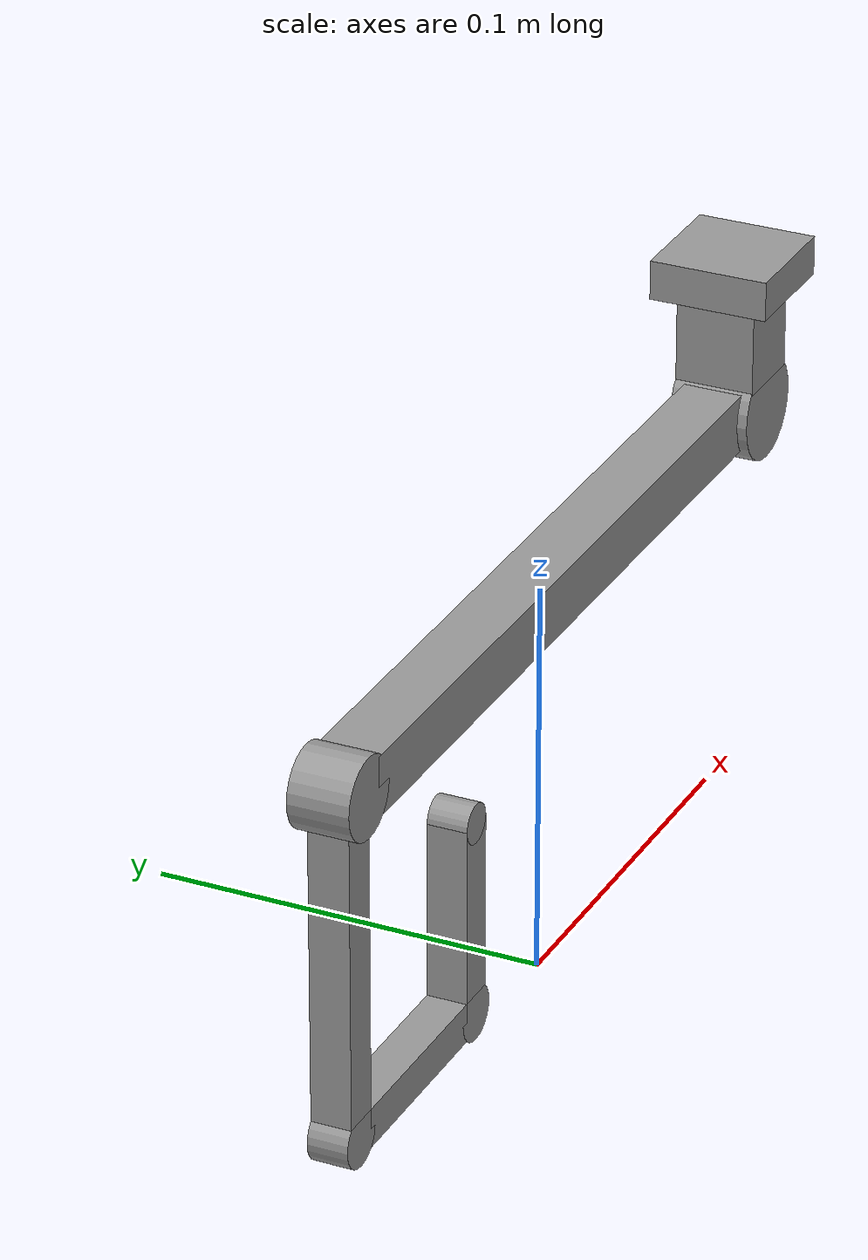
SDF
<?xml version='1.0'?>
<sdf version='1.6'>
  <model name='Hook_03'>
    <link name='base_mount'>
      <pose frame=''>0.11 0 0.1355 0 -0 0</pose>
      <inertial>
        <mass>0.005</mass>
        <inertia>
          <ixx>0.166667</ixx>
          <ixy>0</ixy>
          <ixz>0</ixz>
          <iyy>0.166667</iyy>
          <iyz>0</iyz>
          <izz>0.166667</izz>
        </inertia>
        <pose frame=''>0 0 0 0 -0 0</pose>
      </inertial>
      <self_collide>0</self_collide>
      <kinematic>0</kinematic>
      <visual name='visual'>
        <pose frame=''>0 0 0 0 -0 0</pose>
        <geometry>
          <box>
            <size>0.03 0.03 0.01</size>
          </box>
        </geometry>
        <material>
          <lighting>1</lighting>
          <script>
            <uri>file://media/materials/scripts/gazebo.material</uri>
            <name>Gazebo/Grey</name>
          </script>
          <ambient>0.3 0.3 0.3 1</ambient>
          <diffuse>0.7 0.7 0.7 1</diffuse>
          <specular>0.01 0.01 0.01 1</specular>
          <emissive>0 0 0 1</emissive>
          <shader type='vertex'>
            <normal_map>__default__</normal_map>
          </shader>
        </material>
        <cast_shadows>1</cast_shadows>
        <transparency>0</transparency>
      </visual>
      <collision name='collision'>
        <laser_retro>0</laser_retro>
        <max_contacts>10</max_contacts>
        <pose frame=''>0 0 0 0 -0 0</pose>
        <geometry>
          <box>
            <size>0.03 0.03 0.01</size>
          </box>
        </geometry>
        <surface>
          <friction>
            <ode>
              <mu>1</mu>
              <mu2>1</mu2>
              <fdir1>0 0 0</fdir1>
              <slip1>0</slip1>
              <slip2>0</slip2>
            </ode>
            <torsional>
              <coefficient>1</coefficient>
              <patch_radius>0</patch_radius>
              <surface_radius>0</surface_radius>
              <use_patch_radius>1</use_patch_radius>
              <ode>
                <slip>0</slip>
              </ode>
            </torsional>
          </friction>
          <bounce>
            <restitution_coefficient>0</restitution_coefficient>
            <threshold>1e+06</threshold>
          </bounce>
          <contact>
            <collide_without_contact>0</collide_without_contact>
            <collide_without_contact_bitmask>1</collide_without_contact_bitmask>
            <collide_bitmask>1</collide_bitmask>
            <ode>
              <soft_cfm>0</soft_cfm>
              <soft_erp>0.2</soft_erp>
              <kp>1e+13</kp>
              <kd>1</kd>
              <max_vel>0.01</max_vel>
              <min_depth>0</min_depth>
            </ode>
            <bullet>
              <split_impulse>1</split_impulse>
              <split_impulse_penetration_threshold>-0.01</split_impulse_penetration_threshold>
              <soft_cfm>0</soft_cfm>
              <soft_erp>0.2</soft_erp>
              <kp>1e+13</kp>
              <kd>1</kd>
            </bullet>
          </contact>
        </surface>
      </collision>
    </link>
    <link name='base'>
      <pose frame=''>0.11 0 0.119 0 -0 0</pose>
      <inertial>
        <mass>0.01</mass>
        <inertia>
          <ixx>0.166667</ixx>
          <ixy>0</ixy>
          <ixz>0</ixz>
          <iyy>0.166667</iyy>
          <iyz>0</iyz>
          <izz>0.166667</izz>
        </inertia>
        <pose frame=''>0 0 0 0 -0 0</pose>
      </inertial>
      <self_collide>0</self_collide>
      <kinematic>0</kinematic>
      <visual name='visual'>
        <pose frame=''>0 0 0 0 -0 0</pose>
        <geometry>
          <box>
            <size>0.02 0.02 0.023</size>
          </box>
        </geometry>
        <material>
          <lighting>1</lighting>
          <script>
            <uri>file://media/materials/scripts/gazebo.material</uri>
            <name>Gazebo/Grey</name>
          </script>
          <ambient>0.3 0.3 0.3 1</ambient>
          <diffuse>0.7 0.7 0.7 1</diffuse>
          <specular>0.01 0.01 0.01 1</specular>
          <emissive>0 0 0 1</emissive>
          <shader type='vertex'>
            <normal_map>__default__</normal_map>
          </shader>
        </material>
        <cast_shadows>1</cast_shadows>
        <transparency>0</transparency>
      </visual>
      <collision name='collision'>
        <laser_retro>0</laser_retro>
        <max_contacts>10</max_contacts>
        <pose frame=''>0 0 0 0 -0 0</pose>
        <geometry>
          <box>
            <size>0.02 0.02 0.023</size>
          </box>
        </geometry>
        <surface>
          <friction>
            <ode>
              <mu>1</mu>
              <mu2>1</mu2>
              <fdir1>0 0 0</fdir1>
              <slip1>0</slip1>
              <slip2>0</slip2>
            </ode>
            <torsional>
              <coefficient>1</coefficient>
              <patch_radius>0</patch_radius>
              <surface_radius>0</surface_radius>
              <use_patch_radius>1</use_patch_radius>
              <ode>
                <slip>0</slip>
              </ode>
            </torsional>
          </friction>
          <bounce>
            <restitution_coefficient>0</restitution_coefficient>
            <threshold>1e+06</threshold>
          </bounce>
          <contact>
            <collide_without_contact>0</collide_without_contact>
            <collide_without_contact_bitmask>1</collide_without_contact_bitmask>
            <collide_bitmask>1</collide_bitmask>
            <ode>
              <soft_cfm>0</soft_cfm>
              <soft_erp>0.2</soft_erp>
              <kp>1e+13</kp>
              <kd>1</kd>
              <max_vel>0.01</max_vel>
              <min_depth>0</min_depth>
            </ode>
            <bullet>
              <split_impulse>1</split_impulse>
              <split_impulse_penetration_threshold>-0.01</split_impulse_penetration_threshold>
              <soft_cfm>0</soft_cfm>
              <soft_erp>0.2</soft_erp>
              <kp>1e+13</kp>
              <kd>1</kd>
            </bullet>
          </contact>
        </surface>
      </collision>
    </link>
    <link name='basejoint'>
      <pose frame=''>0.11 0 0.1 0 -0 0</pose>
      <inertial>
        <mass>0.01</mass>
        <inertia>
          <ixx>0.145833</ixx>
          <ixy>0</ixy>
          <ixz>0</ixz>
          <iyy>0.145833</iyy>
          <iyz>0</iyz>
          <izz>0.125</izz>
        </inertia>
        <pose frame=''>0 0 0 0 -0 0</pose>
      </inertial>
      <self_collide>0</self_collide>
      <kinematic>0</kinematic>
      <visual name='visual'>
        <pose frame=''>0 0 0 1.57 -0 0</pose>
        <geometry>
          <cylinder>
            <radius>0.013</radius>
            <length>0.02</length>
          </cylinder>
        </geometry>
        <material>
          <lighting>1</lighting>
          <script>
            <uri>file://media/materials/scripts/gazebo.material</uri>
            <name>Gazebo/Grey</name>
          </script>
          <ambient>0.3 0.3 0.3 1</ambient>
          <diffuse>0.7 0.7 0.7 1</diffuse>
          <specular>0.01 0.01 0.01 1</specular>
          <emissive>0 0 0 1</emissive>
          <shader type='vertex'>
            <normal_map>__default__</normal_map>
          </shader>
        </material>
        <cast_shadows>1</cast_shadows>
        <transparency>0</transparency>
      </visual>
      <collision name='collision'>
        <laser_retro>0</laser_retro>
        <max_contacts>10</max_contacts>
        <pose frame=''>0 0 0 1.57 -0 0</pose>
        <geometry>
          <cylinder>
            <radius>0.013</radius>
            <length>0.02</length>
          </cylinder>
        </geometry>
        <surface>
          <friction>
            <ode>
              <mu>1</mu>
              <mu2>1</mu2>
              <fdir1>0 0 0</fdir1>
              <slip1>0</slip1>
              <slip2>0</slip2>
            </ode>
            <torsional>
              <coefficient>1</coefficient>
              <patch_radius>0</patch_radius>
              <surface_radius>0</surface_radius>
              <use_patch_radius>1</use_patch_radius>
              <ode>
                <slip>0</slip>
              </ode>
            </torsional>
          </friction>
          <bounce>
            <restitution_coefficient>0</restitution_coefficient>
            <threshold>1e+06</threshold>
          </bounce>
          <contact>
            <collide_without_contact>0</collide_without_contact>
            <collide_without_contact_bitmask>1</collide_without_contact_bitmask>
            <collide_bitmask>1</collide_bitmask>
            <ode>
              <soft_cfm>0</soft_cfm>
              <soft_erp>0.2</soft_erp>
              <kp>1e+13</kp>
              <kd>1</kd>
              <max_vel>0.01</max_vel>
              <min_depth>0</min_depth>
            </ode>
            <bullet>
              <split_impulse>1</split_impulse>
              <split_impulse_penetration_threshold>-0.01</split_impulse_penetration_threshold>
              <soft_cfm>0</soft_cfm>
              <soft_erp>0.2</soft_erp>
              <kp>1e+13</kp>
              <kd>1</kd>
            </bullet>
          </contact>
        </surface>
      </collision>
    </link>
    <link name='arm'>
      <pose frame=''>0 0 0.1 0 -0 0</pose>
      <inertial>
        <mass>0.02</mass>
        <inertia>
          <ixx>0.166667</ixx>
          <ixy>0</ixy>
          <ixz>0</ixz>
          <iyy>0.166667</iyy>
          <iyz>0</iyz>
          <izz>0.166667</izz>
        </inertia>
        <pose frame=''>0 0 0 0 -0 0</pose>
      </inertial>
      <self_collide>0</self_collide>
      <kinematic>0</kinematic>
      <gravity>1</gravity>
      <visual name='visual'>
        <pose frame=''>0 0 0 0 -0 0</pose>
        <geometry>
          <box>
            <size>0.2 0.015 0.015</size>
          </box>
        </geometry>
        <material>
          <lighting>1</lighting>
          <script>
            <uri>file://media/materials/scripts/gazebo.material</uri>
            <name>Gazebo/Grey</name>
          </script>
          <ambient>0.3 0.3 0.3 1</ambient>
          <diffuse>0.7 0.7 0.7 1</diffuse>
          <specular>0.01 0.01 0.01 1</specular>
          <emissive>0 0 0 1</emissive>
          <shader type='vertex'>
            <normal_map>__default__</normal_map>
          </shader>
        </material>
        <cast_shadows>1</cast_shadows>
        <transparency>0</transparency>
      </visual>
      <collision name='collision'>
        <laser_retro>0</laser_retro>
        <max_contacts>10</max_contacts>
        <pose frame=''>0 0 0 0 -0 0</pose>
        <geometry>
          <box>
            <size>0.2 0.015 0.015</size>
          </box>
        </geometry>
        <surface>
          <friction>
            <ode>
              <mu>1</mu>
              <mu2>1</mu2>
              <fdir1>0 0 0</fdir1>
              <slip1>0</slip1>
              <slip2>0</slip2>
            </ode>
            <torsional>
              <coefficient>1</coefficient>
              <patch_radius>0</patch_radius>
              <surface_radius>0</surface_radius>
              <use_patch_radius>1</use_patch_radius>
              <ode>
                <slip>0</slip>
              </ode>
            </torsional>
          </friction>
          <bounce>
            <restitution_coefficient>0</restitution_coefficient>
            <threshold>1e+06</threshold>
          </bounce>
          <contact>
            <collide_without_contact>0</collide_without_contact>
            <collide_without_contact_bitmask>1</collide_without_contact_bitmask>
            <collide_bitmask>1</collide_bitmask>
            <ode>
              <soft_cfm>0</soft_cfm>
              <soft_erp>0.2</soft_erp>
              <kp>1e+13</kp>
              <kd>1</kd>
              <max_vel>0.01</max_vel>
              <min_depth>0</min_depth>
            </ode>
            <bullet>
              <split_impulse>1</split_impulse>
              <split_impulse_penetration_threshold>-0.01</split_impulse_penetration_threshold>
              <soft_cfm>0</soft_cfm>
              <soft_erp>0.2</soft_erp>
              <kp>1e+13</kp>
              <kd>1</kd>
            </bullet>
          </contact>
        </surface>
      </collision>
    </link>
    <link name='armjoint'>
      <pose frame=''>-0.105 0 0.1 0 -0 0</pose>
      <inertial>
        <mass>0.01</mass>
        <inertia>
          <ixx>0.145833</ixx>
          <ixy>0</ixy>
          <ixz>0</ixz>
          <iyy>0.145833</iyy>
          <iyz>0</iyz>
          <izz>0.125</izz>
        </inertia>
        <pose frame=''>0 0 0 0 -0 0</pose>
      </inertial>
      <self_collide>0</self_collide>
      <kinematic>0</kinematic>
      <gravity>1</gravity>
      <visual name='visual'>
        <pose frame=''>0 0 0 1.57 -0 0</pose>
        <geometry>
          <cylinder>
            <radius>0.01</radius>
            <length>0.015</length>
          </cylinder>
        </geometry>
        <material>
          <lighting>1</lighting>
          <script>
            <uri>file://media/materials/scripts/gazebo.material</uri>
            <name>Gazebo/Grey</name>
          </script>
          <ambient>0.3 0.3 0.3 1</ambient>
          <diffuse>0.7 0.7 0.7 1</diffuse>
          <specular>0.01 0.01 0.01 1</specular>
          <emissive>0 0 0 1</emissive>
          <shader type='vertex'>
            <normal_map>__default__</normal_map>
          </shader>
        </material>
        <cast_shadows>1</cast_shadows>
        <transparency>0</transparency>
      </visual>
      <collision name='collision'>
        <laser_retro>0</laser_retro>
        <max_contacts>10</max_contacts>
        <pose frame=''>0 0 0 1.57 -0 0</pose>
        <geometry>
          <cylinder>
            <radius>0.01</radius>
            <length>0.015</length>
          </cylinder>
        </geometry>
        <surface>
          <friction>
            <ode>
              <mu>1</mu>
              <mu2>1</mu2>
              <fdir1>0 0 0</fdir1>
              <slip1>0</slip1>
              <slip2>0</slip2>
            </ode>
            <torsional>
              <coefficient>1</coefficient>
              <patch_radius>0</patch_radius>
              <surface_radius>0</surface_radius>
              <use_patch_radius>1</use_patch_radius>
              <ode>
                <slip>0</slip>
              </ode>
            </torsional>
          </friction>
          <bounce>
            <restitution_coefficient>0</restitution_coefficient>
            <threshold>1e+06</threshold>
          </bounce>
          <contact>
            <collide_without_contact>0</collide_without_contact>
            <collide_without_contact_bitmask>1</collide_without_contact_bitmask>
            <collide_bitmask>1</collide_bitmask>
            <ode>
              <soft_cfm>0</soft_cfm>
              <soft_erp>0.2</soft_erp>
              <kp>1e+13</kp>
              <kd>1</kd>
              <max_vel>0.01</max_vel>
              <min_depth>0</min_depth>
            </ode>
            <bullet>
              <split_impulse>1</split_impulse>
              <split_impulse_penetration_threshold>-0.01</split_impulse_penetration_threshold>
              <soft_cfm>0</soft_cfm>
              <soft_erp>0.2</soft_erp>
              <kp>1e+13</kp>
              <kd>1</kd>
            </bullet>
          </contact>
        </surface>
      </collision>
    </link>
    <link name='bone1'>
      <pose frame=''>-0.105 0 0.055 0 -0 0</pose>
      <inertial>
        <mass>0.01</mass>
        <inertia>
          <ixx>0.166667</ixx>
          <ixy>0</ixy>
          <ixz>0</ixz>
          <iyy>0.166667</iyy>
          <iyz>0</iyz>
          <izz>0.166667</izz>
        </inertia>
        <pose frame=''>0 0 0 0 -0 0</pose>
      </inertial>
      <self_collide>0</self_collide>
      <kinematic>0</kinematic>
      <visual name='visual'>
        <pose frame=''>0 0 0 0 -0 0</pose>
        <geometry>
          <box>
            <size>0.01 0.01 0.075</size>
          </box>
        </geometry>
        <material>
          <lighting>1</lighting>
          <script>
            <uri>file://media/materials/scripts/gazebo.material</uri>
            <name>Gazebo/Grey</name>
          </script>
          <ambient>0.3 0.3 0.3 1</ambient>
          <diffuse>0.7 0.7 0.7 1</diffuse>
          <specular>0.01 0.01 0.01 1</specular>
          <emissive>0 0 0 1</emissive>
          <shader type='vertex'>
            <normal_map>__default__</normal_map>
          </shader>
        </material>
        <cast_shadows>1</cast_shadows>
        <transparency>0</transparency>
      </visual>
      <collision name='collision'>
        <laser_retro>0</laser_retro>
        <max_contacts>10</max_contacts>
        <pose frame=''>0 0 0 0 -0 0</pose>
        <geometry>
          <box>
            <size>0.01 0.01 0.075</size>
          </box>
        </geometry>
        <surface>
          <friction>
            <ode>
              <mu>1</mu>
              <mu2>1</mu2>
              <fdir1>0 0 0</fdir1>
              <slip1>0</slip1>
              <slip2>0</slip2>
            </ode>
            <torsional>
              <coefficient>1</coefficient>
              <patch_radius>0</patch_radius>
              <surface_radius>0</surface_radius>
              <use_patch_radius>1</use_patch_radius>
              <ode>
                <slip>0</slip>
              </ode>
            </torsional>
          </friction>
          <bounce>
            <restitution_coefficient>0</restitution_coefficient>
            <threshold>1e+06</threshold>
          </bounce>
          <contact>
            <collide_without_contact>0</collide_without_contact>
            <collide_without_contact_bitmask>1</collide_without_contact_bitmask>
            <collide_bitmask>1</collide_bitmask>
            <ode>
              <soft_cfm>0</soft_cfm>
              <soft_erp>0.2</soft_erp>
              <kp>1e+13</kp>
              <kd>1</kd>
              <max_vel>0.01</max_vel>
              <min_depth>0</min_depth>
            </ode>
            <bullet>
              <split_impulse>1</split_impulse>
              <split_impulse_penetration_threshold>-0.01</split_impulse_penetration_threshold>
              <soft_cfm>0</soft_cfm>
              <soft_erp>0.2</soft_erp>
              <kp>1e+13</kp>
              <kd>1</kd>
            </bullet>
          </contact>
        </surface>
      </collision>
    </link>
    <link name='bone1joint'>
      <pose frame=''>-0.105 0 0.0125 0 -0 0</pose>
      <inertial>
        <mass>0.01</mass>
        <inertia>
          <ixx>0.145833</ixx>
          <ixy>0</ixy>
          <ixz>0</ixz>
          <iyy>0.145833</iyy>
          <iyz>0</iyz>
          <izz>0.125</izz>
        </inertia>
        <pose frame=''>0 0 0 0 -0 0</pose>
      </inertial>
      <self_collide>0</self_collide>
      <kinematic>0</kinematic>
      <gravity>1</gravity>
      <visual name='visual'>
        <pose frame=''>0 0 0 1.57 -0 0</pose>
        <geometry>
          <cylinder>
            <radius>0.007</radius>
            <length>0.01</length>
          </cylinder>
        </geometry>
        <material>
          <lighting>1</lighting>
          <script>
            <uri>file://media/materials/scripts/gazebo.material</uri>
            <name>Gazebo/Grey</name>
          </script>
          <ambient>0.3 0.3 0.3 1</ambient>
          <diffuse>0.7 0.7 0.7 1</diffuse>
          <specular>0.01 0.01 0.01 1</specular>
          <emissive>0 0 0 1</emissive>
          <shader type='vertex'>
            <normal_map>__default__</normal_map>
          </shader>
        </material>
        <cast_shadows>1</cast_shadows>
        <transparency>0</transparency>
      </visual>
      <collision name='collision'>
        <laser_retro>0</laser_retro>
        <max_contacts>10</max_contacts>
        <pose frame=''>0 0 0 1.57 -0 0</pose>
        <geometry>
          <cylinder>
            <radius>0.007</radius>
            <length>0.01</length>
          </cylinder>
        </geometry>
        <surface>
          <friction>
            <ode>
              <mu>1</mu>
              <mu2>1</mu2>
              <fdir1>0 0 0</fdir1>
              <slip1>0</slip1>
              <slip2>0</slip2>
            </ode>
            <torsional>
              <coefficient>1</coefficient>
              <patch_radius>0</patch_radius>
              <surface_radius>0</surface_radius>
              <use_patch_radius>1</use_patch_radius>
              <ode>
                <slip>0</slip>
              </ode>
            </torsional>
          </friction>
          <bounce>
            <restitution_coefficient>0</restitution_coefficient>
            <threshold>1e+06</threshold>
          </bounce>
          <contact>
            <collide_without_contact>0</collide_without_contact>
            <collide_without_contact_bitmask>1</collide_without_contact_bitmask>
            <collide_bitmask>1</collide_bitmask>
            <ode>
              <soft_cfm>0</soft_cfm>
              <soft_erp>0.2</soft_erp>
              <kp>1e+13</kp>
              <kd>1</kd>
              <max_vel>0.01</max_vel>
              <min_depth>0</min_depth>
            </ode>
            <bullet>
              <split_impulse>1</split_impulse>
              <split_impulse_penetration_threshold>-0.01</split_impulse_penetration_threshold>
              <soft_cfm>0</soft_cfm>
              <soft_erp>0.2</soft_erp>
              <kp>1e+13</kp>
              <kd>1</kd>
            </bullet>
          </contact>
        </surface>
      </collision>
    </link>
    <link name='bone2'>
      <pose frame=''>-0.075 0 0.0125 0 -0 0</pose>
      <inertial>
        <mass>0.01</mass>
        <inertia>
          <ixx>0.166667</ixx>
          <ixy>0</ixy>
          <ixz>0</ixz>
          <iyy>0.166667</iyy>
          <iyz>0</iyz>
          <izz>0.166667</izz>
        </inertia>
        <pose frame=''>0 0 0 0 -0 0</pose>
      </inertial>
      <self_collide>0</self_collide>
      <kinematic>0</kinematic>
      <visual name='visual'>
        <pose frame=''>0 0 0 0 -0 0</pose>
        <geometry>
          <box>
            <size>0.05 0.01 0.01</size>
          </box>
        </geometry>
        <material>
          <lighting>1</lighting>
          <script>
            <uri>file://media/materials/scripts/gazebo.material</uri>
            <name>Gazebo/Grey</name>
          </script>
          <ambient>0.3 0.3 0.3 1</ambient>
          <diffuse>0.7 0.7 0.7 1</diffuse>
          <specular>0.01 0.01 0.01 1</specular>
          <emissive>0 0 0 1</emissive>
          <shader type='vertex'>
            <normal_map>__default__</normal_map>
          </shader>
        </material>
        <cast_shadows>1</cast_shadows>
        <transparency>0</transparency>
      </visual>
      <collision name='collision'>
        <laser_retro>0</laser_retro>
        <max_contacts>10</max_contacts>
        <pose frame=''>0 0 0 0 -0 0</pose>
        <geometry>
          <box>
            <size>0.05 0.01 0.01</size>
          </box>
        </geometry>
        <surface>
          <friction>
            <ode>
              <mu>1</mu>
              <mu2>1</mu2>
              <fdir1>0 0 0</fdir1>
              <slip1>0</slip1>
              <slip2>0</slip2>
            </ode>
            <torsional>
              <coefficient>1</coefficient>
              <patch_radius>0</patch_radius>
              <surface_radius>0</surface_radius>
              <use_patch_radius>1</use_patch_radius>
              <ode>
                <slip>0</slip>
              </ode>
            </torsional>
          </friction>
          <bounce>
            <restitution_coefficient>0</restitution_coefficient>
            <threshold>1e+06</threshold>
          </bounce>
          <contact>
            <collide_without_contact>0</collide_without_contact>
            <collide_without_contact_bitmask>1</collide_without_contact_bitmask>
            <collide_bitmask>1</collide_bitmask>
            <ode>
              <soft_cfm>0</soft_cfm>
              <soft_erp>0.2</soft_erp>
              <kp>1e+13</kp>
              <kd>1</kd>
              <max_vel>0.01</max_vel>
              <min_depth>0</min_depth>
            </ode>
            <bullet>
              <split_impulse>1</split_impulse>
              <split_impulse_penetration_threshold>-0.01</split_impulse_penetration_threshold>
              <soft_cfm>0</soft_cfm>
              <soft_erp>0.2</soft_erp>
              <kp>1e+13</kp>
              <kd>1</kd>
            </bullet>
          </contact>
        </surface>
      </collision>
    </link>
    <link name='bone2joint'>
      <pose frame=''>-0.045 0 0.0125 0 -0 0</pose>
      <inertial>
        <mass>0.01</mass>
        <inertia>
          <ixx>0.145833</ixx>
          <ixy>0</ixy>
          <ixz>0</ixz>
          <iyy>0.145833</iyy>
          <iyz>0</iyz>
          <izz>0.125</izz>
        </inertia>
        <pose frame=''>0 0 0 0 -0 0</pose>
      </inertial>
      <self_collide>0</self_collide>
      <kinematic>0</kinematic>
      <gravity>1</gravity>
      <visual name='visual'>
        <pose frame=''>0 0 0 1.57 -0 0</pose>
        <geometry>
          <cylinder>
            <radius>0.007</radius>
            <length>0.01</length>
          </cylinder>
        </geometry>
        <material>
          <lighting>1</lighting>
          <script>
            <uri>file://media/materials/scripts/gazebo.material</uri>
            <name>Gazebo/Grey</name>
          </script>
          <ambient>0.3 0.3 0.3 1</ambient>
          <diffuse>0.7 0.7 0.7 1</diffuse>
          <specular>0.01 0.01 0.01 1</specular>
          <emissive>0 0 0 1</emissive>
          <shader type='vertex'>
            <normal_map>__default__</normal_map>
          </shader>
        </material>
        <cast_shadows>1</cast_shadows>
        <transparency>0</transparency>
      </visual>
      <collision name='collision'>
        <laser_retro>0</laser_retro>
        <max_contacts>10</max_contacts>
        <pose frame=''>0 0 0 1.57 -0 0</pose>
        <geometry>
          <cylinder>
            <radius>0.007</radius>
            <length>0.01</length>
          </cylinder>
        </geometry>
        <surface>
          <friction>
            <ode>
              <mu>1</mu>
              <mu2>1</mu2>
              <fdir1>0 0 0</fdir1>
              <slip1>0</slip1>
              <slip2>0</slip2>
            </ode>
            <torsional>
              <coefficient>1</coefficient>
              <patch_radius>0</patch_radius>
              <surface_radius>0</surface_radius>
              <use_patch_radius>1</use_patch_radius>
              <ode>
                <slip>0</slip>
              </ode>
            </torsional>
          </friction>
          <bounce>
            <restitution_coefficient>0</restitution_coefficient>
            <threshold>1e+06</threshold>
          </bounce>
          <contact>
            <collide_without_contact>0</collide_without_contact>
            <collide_without_contact_bitmask>1</collide_without_contact_bitmask>
            <collide_bitmask>1</collide_bitmask>
            <ode>
              <soft_cfm>0</soft_cfm>
              <soft_erp>0.2</soft_erp>
              <kp>1e+13</kp>
              <kd>1</kd>
              <max_vel>0.01</max_vel>
              <min_depth>0</min_depth>
            </ode>
            <bullet>
              <split_impulse>1</split_impulse>
              <split_impulse_penetration_threshold>-0.01</split_impulse_penetration_threshold>
              <soft_cfm>0</soft_cfm>
              <soft_erp>0.2</soft_erp>
              <kp>1e+13</kp>
              <kd>1</kd>
            </bullet>
          </contact>
        </surface>
      </collision>
    </link>
    <link name='bone3'>
      <pose frame=''>-0.045 0 0.04 0 -0 0</pose>
      <inertial>
        <mass>0.01</mass>
        <inertia>
          <ixx>0.166667</ixx>
          <ixy>0</ixy>
          <ixz>0</ixz>
          <iyy>0.166667</iyy>
          <iyz>0</iyz>
          <izz>0.166667</izz>
        </inertia>
        <pose frame=''>0 0 0 0 -0 0</pose>
      </inertial>
      <self_collide>0</self_collide>
      <kinematic>0</kinematic>
      <visual name='visual'>
        <pose frame=''>0 0 0 0 -0 0</pose>
        <geometry>
          <box>
            <size>0.01 0.01 0.045</size>
          </box>
        </geometry>
        <material>
          <lighting>1</lighting>
          <script>
            <uri>file://media/materials/scripts/gazebo.material</uri>
            <name>Gazebo/Grey</name>
          </script>
          <ambient>0.3 0.3 0.3 1</ambient>
          <diffuse>0.7 0.7 0.7 1</diffuse>
          <specular>0.01 0.01 0.01 1</specular>
          <emissive>0 0 0 1</emissive>
          <shader type='vertex'>
            <normal_map>__default__</normal_map>
          </shader>
        </material>
        <cast_shadows>1</cast_shadows>
        <transparency>0</transparency>
      </visual>
      <collision name='collision'>
        <laser_retro>0</laser_retro>
        <max_contacts>10</max_contacts>
        <pose frame=''>0 0 0 0 -0 0</pose>
        <geometry>
          <box>
            <size>0.01 0.01 0.045</size>
          </box>
        </geometry>
        <surface>
          <friction>
            <ode>
              <mu>1</mu>
              <mu2>1</mu2>
              <fdir1>0 0 0</fdir1>
              <slip1>0</slip1>
              <slip2>0</slip2>
            </ode>
            <torsional>
              <coefficient>1</coefficient>
              <patch_radius>0</patch_radius>
              <surface_radius>0</surface_radius>
              <use_patch_radius>1</use_patch_radius>
              <ode>
                <slip>0</slip>
              </ode>
            </torsional>
          </friction>
          <bounce>
            <restitution_coefficient>0</restitution_coefficient>
            <threshold>1e+06</threshold>
          </bounce>
          <contact>
            <collide_without_contact>0</collide_without_contact>
            <collide_without_contact_bitmask>1</collide_without_contact_bitmask>
            <collide_bitmask>1</collide_bitmask>
            <ode>
              <soft_cfm>0</soft_cfm>
              <soft_erp>0.2</soft_erp>
              <kp>1e+13</kp>
              <kd>1</kd>
              <max_vel>0.01</max_vel>
              <min_depth>0</min_depth>
            </ode>
            <bullet>
              <split_impulse>1</split_impulse>
              <split_impulse_penetration_threshold>-0.01</split_impulse_penetration_threshold>
              <soft_cfm>0</soft_cfm>
              <soft_erp>0.2</soft_erp>
              <kp>1e+13</kp>
              <kd>1</kd>
            </bullet>
          </contact>
        </surface>
      </collision>
    </link>
    <link name='bone3tip'>
      <pose frame=''>-0.045 0 0.0625 0 -0 0</pose>
      <inertial>
        <mass>0.01</mass>
        <inertia>
          <ixx>0.145833</ixx>
          <ixy>0</ixy>
          <ixz>0</ixz>
          <iyy>0.145833</iyy>
          <iyz>0</iyz>
          <izz>0.125</izz>
        </inertia>
        <pose frame=''>0 0 0 0 -0 0</pose>
      </inertial>
      <self_collide>0</self_collide>
      <kinematic>0</kinematic>
      <gravity>1</gravity>
      <visual name='visual'>
        <pose frame=''>0 0 0 1.57 -0 0</pose>
        <geometry>
          <cylinder>
            <radius>0.005</radius>
            <length>0.01</length>
          </cylinder>
        </geometry>
        <material>
          <lighting>1</lighting>
          <script>
            <uri>file://media/materials/scripts/gazebo.material</uri>
            <name>Gazebo/Grey</name>
          </script>
          <ambient>0.3 0.3 0.3 1</ambient>
          <diffuse>0.7 0.7 0.7 1</diffuse>
          <specular>0.01 0.01 0.01 1</specular>
          <emissive>0 0 0 1</emissive>
          <shader type='vertex'>
            <normal_map>__default__</normal_map>
          </shader>
        </material>
        <cast_shadows>1</cast_shadows>
        <transparency>0</transparency>
      </visual>
      <collision name='collision'>
        <laser_retro>0</laser_retro>
        <max_contacts>10</max_contacts>
        <pose frame=''>0 0 0 1.57 -0 0</pose>
        <geometry>
          <cylinder>
            <radius>0.005</radius>
            <length>0.01</length>
          </cylinder>
        </geometry>
        <surface>
          <friction>
            <ode>
              <mu>1</mu>
              <mu2>1</mu2>
              <fdir1>0 0 0</fdir1>
              <slip1>0</slip1>
              <slip2>0</slip2>
            </ode>
            <torsional>
              <coefficient>1</coefficient>
              <patch_radius>0</patch_radius>
              <surface_radius>0</surface_radius>
              <use_patch_radius>1</use_patch_radius>
              <ode>
                <slip>0</slip>
              </ode>
            </torsional>
          </friction>
          <bounce>
            <restitution_coefficient>0</restitution_coefficient>
            <threshold>1e+06</threshold>
          </bounce>
          <contact>
            <collide_without_contact>0</collide_without_contact>
            <collide_without_contact_bitmask>1</collide_without_contact_bitmask>
            <collide_bitmask>1</collide_bitmask>
            <ode>
              <soft_cfm>0</soft_cfm>
              <soft_erp>0.2</soft_erp>
              <kp>1e+13</kp>
              <kd>1</kd>
              <max_vel>0.01</max_vel>
              <min_depth>0</min_depth>
            </ode>
            <bullet>
              <split_impulse>1</split_impulse>
              <split_impulse_penetration_threshold>-0.01</split_impulse_penetration_threshold>
              <soft_cfm>0</soft_cfm>
              <soft_erp>0.2</soft_erp>
              <kp>1e+13</kp>
              <kd>1</kd>
            </bullet>
          </contact>
        </surface>
      </collision>
    </link>
    <joint name='base_mount_JOINT_0' type='fixed'>
      <parent>base_mount</parent>
      <child>base</child>
      <pose frame=''>0 0 0 0 -0 0</pose>
      <physics>
        <ode>
          <limit>
            <cfm>0</cfm>
            <erp>0.2</erp>
          </limit>
          <suspension>
            <cfm>0</cfm>
            <erp>0.2</erp>
          </suspension>
        </ode>
      </physics>
    </joint>
    <joint name='base_JOINT_1' type='fixed'>
      <parent>base</parent>
      <child>basejoint</child>
      <pose frame=''>0 0 0 0 -0 0</pose>
      <physics>
        <ode>
          <limit>
            <cfm>0</cfm>
            <erp>0.2</erp>
          </limit>
          <suspension>
            <cfm>0</cfm>
            <erp>0.2</erp>
          </suspension>
        </ode>
      </physics>
    </joint>
    <joint name='arm_JOINT_2' type='revolute'>
      <parent>arm</parent>
      <child>basejoint</child>
      <pose frame=''>0 0 0 0 -0 0</pose>
      <axis>
        <xyz>0 1 0</xyz>
        <use_parent_model_frame>0</use_parent_model_frame>
        <limit>
          <lower>-1.79769e+308</lower>
          <upper>1.79769e+308</upper>
          <effort>-1</effort>
          <velocity>-1</velocity>
        </limit>
        <dynamics>
          <spring_reference>0</spring_reference>
          <spring_stiffness>0</spring_stiffness>
          <damping>0</damping>
          <friction>0</friction>
        </dynamics>
      </axis>
      <physics>
        <ode>
          <limit>
            <cfm>0</cfm>
            <erp>0.2</erp>
          </limit>
          <suspension>
            <cfm>0</cfm>
            <erp>0.2</erp>
          </suspension>
        </ode>
      </physics>
    </joint>
    <joint name='arm_JOINT_3' type='fixed'>
      <parent>arm</parent>
      <child>armjoint</child>
      <pose frame=''>0 0 0 0 -0 0</pose>
      <physics>
        <ode>
          <limit>
            <cfm>0</cfm>
            <erp>0.2</erp>
          </limit>
          <suspension>
            <cfm>0</cfm>
            <erp>0.2</erp>
          </suspension>
        </ode>
      </physics>
    </joint>
    <joint name='bone1_JOINT_4' type='revolute'>
      <parent>bone1</parent>
      <child>armjoint</child>
      <pose frame=''>0 0 0 0 -0 0</pose>
      <axis>
        <xyz>0 1 0</xyz>
        <use_parent_model_frame>0</use_parent_model_frame>
        <limit>
          <lower>-1.79769e+308</lower>
          <upper>1.79769e+308</upper>
          <effort>-1</effort>
          <velocity>-1</velocity>
        </limit>
        <dynamics>
          <spring_reference>0</spring_reference>
          <spring_stiffness>0</spring_stiffness>
          <damping>0</damping>
          <friction>0</friction>
        </dynamics>
      </axis>
      <physics>
        <ode>
          <limit>
            <cfm>0</cfm>
            <erp>0.2</erp>
          </limit>
          <suspension>
            <cfm>0</cfm>
            <erp>0.2</erp>
          </suspension>
        </ode>
      </physics>
    </joint>
    <joint name='bone1_JOINT_5' type='fixed'>
      <parent>bone1</parent>
      <child>bone1joint</child>
      <pose frame=''>0 0 0 0 -0 0</pose>
      <physics>
        <ode>
          <limit>
            <cfm>0</cfm>
            <erp>0.2</erp>
          </limit>
          <suspension>
            <cfm>0</cfm>
            <erp>0.2</erp>
          </suspension>
        </ode>
      </physics>
    </joint>
    <joint name='bone2_JOINT_6' type='fixed'>
      <parent>bone2</parent>
      <child>bone1joint</child>
      <pose frame=''>0 0 0 0 -0 0</pose>
      <physics>
        <ode>
          <limit>
            <cfm>0</cfm>
            <erp>0.2</erp>
          </limit>
          <suspension>
            <cfm>0</cfm>
            <erp>0.2</erp>
          </suspension>
        </ode>
      </physics>
    </joint>
    <joint name='bone2_JOINT_7' type='fixed'>
      <parent>bone2</parent>
      <child>bone2joint</child>
      <pose frame=''>0 0 0 0 -0 0</pose>
      <physics>
        <ode>
          <limit>
            <cfm>0</cfm>
            <erp>0.2</erp>
          </limit>
          <suspension>
            <cfm>0</cfm>
            <erp>0.2</erp>
          </suspension>
        </ode>
      </physics>
    </joint>
    <joint name='bone3_JOINT_8' type='fixed'>
      <parent>bone3</parent>
      <child>bone2joint</child>
      <pose frame=''>0 0 0 0 -0 0</pose>
      <physics>
        <ode>
          <limit>
            <cfm>0</cfm>
            <erp>0.2</erp>
          </limit>
          <suspension>
            <cfm>0</cfm>
            <erp>0.2</erp>
          </suspension>
        </ode>
      </physics>
    </joint>
    <joint name='bone3_JOINT_9' type='fixed'>
      <parent>bone3</parent>
      <child>bone3tip</child>
      <pose frame=''>0 0 0 0 -0 0</pose>
      <physics>
        <ode>
          <limit>
            <cfm>0</cfm>
            <erp>0.2</erp>
          </limit>
          <suspension>
            <cfm>0</cfm>
            <erp>0.2</erp>
          </suspension>
        </ode>
      </physics>
    </joint>
    <static>0</static>
    <allow_auto_disable>1</allow_auto_disable>
  </model>
</sdf>
